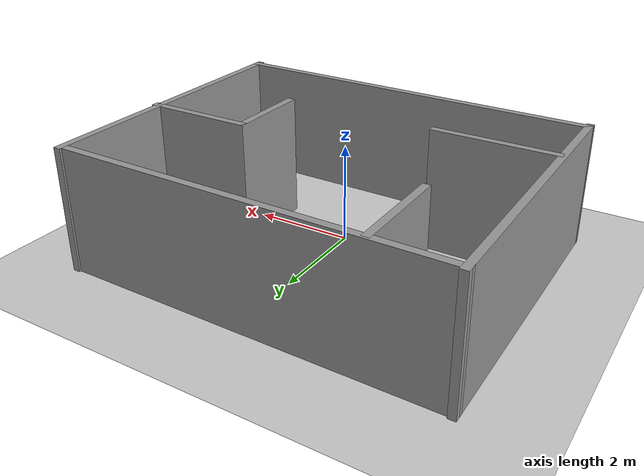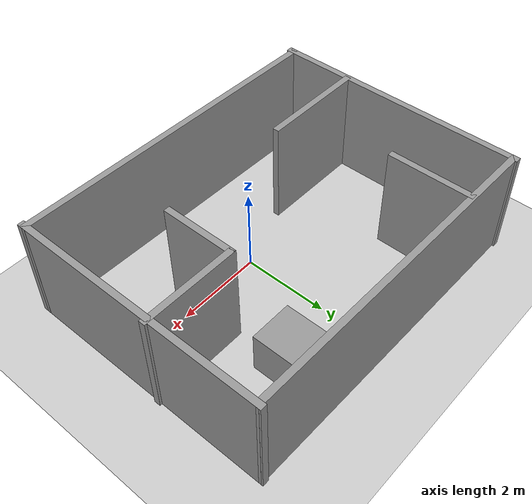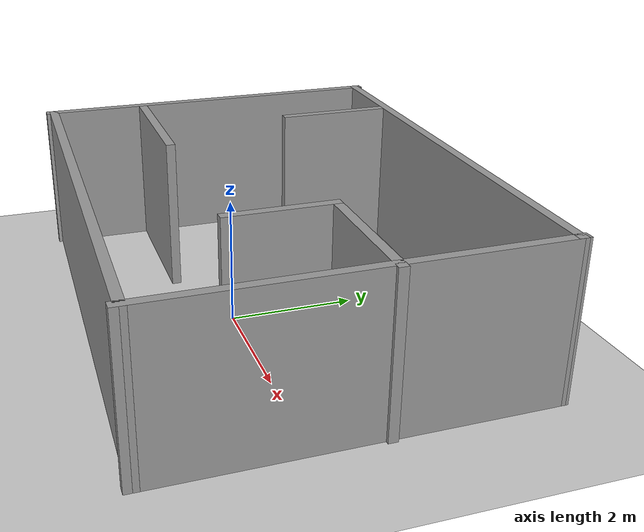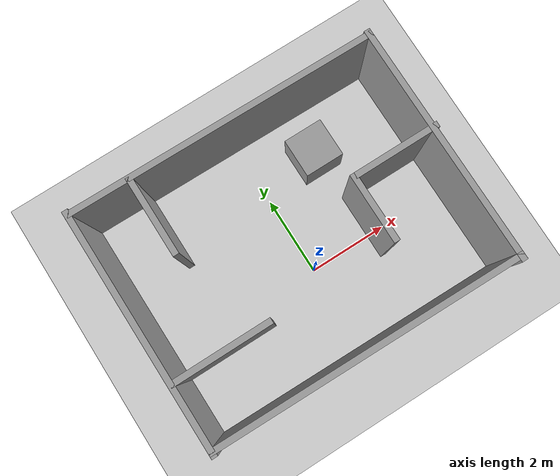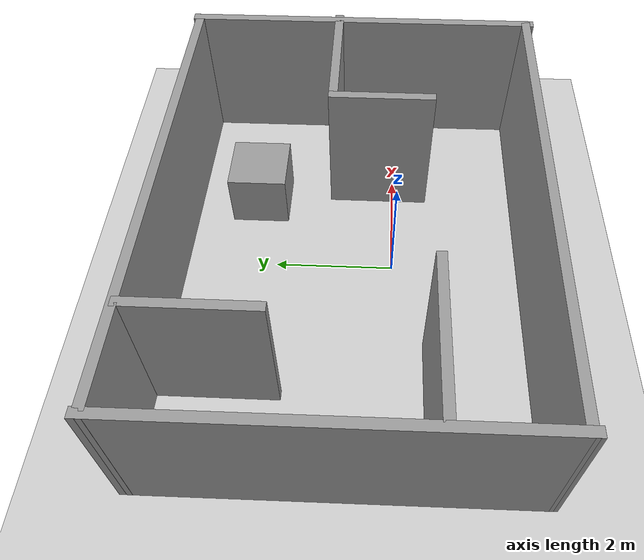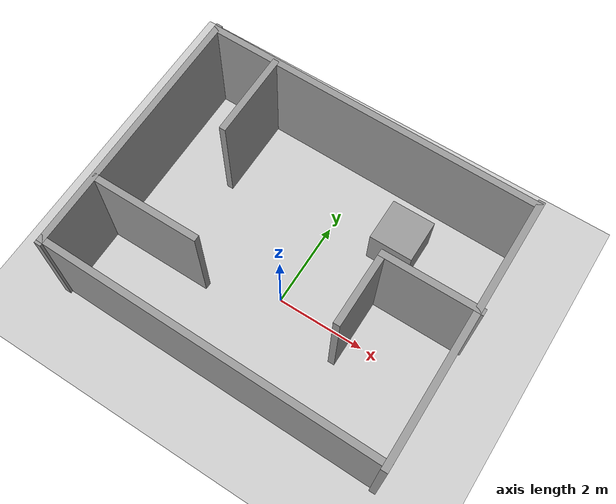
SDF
<sdf version="1.6">
 <world name="default">
  <light name="sun" type="directional">
   <pose>0 0 10 0 -0 0</pose>
   <diffuse>0.8 0.8 0.8 1</diffuse>
   <specular>0.2 0.2 0.2 1</specular>
   <attenuation>
    <range>1000</range>
    <constant>0.9</constant>
    <linear>0.01</linear>
    <quadratic>0.001</quadratic>
   </attenuation>
   <direction>-0.5 0.1 -0.9</direction>
  </light>
  <model name="ground_plane">
   <static>1</static>
   <link name="link">
    <collision name="collision">
     <geometry><plane><normal>0 0 1</normal><size>100 100</size></plane></geometry>
     <surface>
      <contact><collide_bitmask>65535</collide_bitmask></contact>
      <friction><ode><mu>100</mu><mu2>50</mu2></ode></friction>
     </surface>
    </collision>
    <visual name="visual">
     <cast_shadows>0</cast_shadows>
     <geometry><plane><normal>0 0 1</normal><size>100 100</size></plane></geometry>
     <material>
      <script><uri>file://media/materials/scripts/gazebo.material</uri><name>Gazebo/Grey</name></script>
     </material>
    </visual>
   </link>
  </model>
  <gravity>0 0 -9.8</gravity>
  <magnetic_field>6e-06 2.3e-05 -4.2e-05</magnetic_field>
  <atmosphere type="adiabatic"/>
  <physics name="default_physics" default="0" type="ode">
   <max_step_size>0.001</max_step_size>
   <real_time_factor>1</real_time_factor>
   <real_time_update_rate>1000</real_time_update_rate>
  </physics>
  <scene><ambient>0.4 0.4 0.4 1</ambient><background>0.7 0.7 0.7 1</background><shadows>1</shadows></scene>
  <audio><device>default</device></audio>
  <spherical_coordinates>
   <surface_model>EARTH_WGS84</surface_model>
   <latitude_deg>0</latitude_deg>
   <longitude_deg>0</longitude_deg>
   <elevation>0</elevation>
   <heading_deg>0</heading_deg>
  </spherical_coordinates>
  <model name="wall_test">
   <pose>-0.131016 0.687768 0 0 -0 0</pose>
   <link name="Wall_0">
    <collision name="Wall_0_Collision">
     <geometry><box><size>6.09764 0.15 2.5</size></box></geometry>
     <pose>0 0 1.25 0 -0 0</pose>
    </collision>
    <visual name="Wall_0_Visual">
     <pose>0 0 1.25 0 -0 0</pose>
     <geometry><box><size>6.09764 0.15 2.5</size></box></geometry>
     <material>
      <script><uri>file://media/materials/scripts/gazebo.material</uri><name>Gazebo/Grey</name></script>
      <ambient>1 1 1 1</ambient>
     </material>
     <meta><layer>0</layer></meta>
    </visual>
    <pose>-3.85698 0.040227 0 0 -0 -1.56742</pose>
   </link>
   <link name="Wall_1">
    <collision name="Wall_1_Collision">
     <geometry><box><size>7.82212 0.15 2.5</size></box></geometry>
     <pose>0 0 1.25 0 -0 0</pose>
    </collision>
    <visual name="Wall_1_Visual">
     <pose>0 0 1.25 0 -0 0</pose>
     <geometry><box><size>7.82212 0.15 2.5</size></box></geometry>
     <material>
      <script><uri>file://media/materials/scripts/gazebo.material</uri><name>Gazebo/Grey</name></script>
      <ambient>1 1 1 1</ambient>
     </material>
     <meta><layer>0</layer></meta>
    </visual>
    <pose>-0.011079 -2.91346 0 0 -0 -0.010487</pose>
   </link>
   <link name="Wall_13">
    <collision name="Wall_13_Collision">
     <geometry><box><size>2 0.15 2.5</size></box></geometry>
     <pose>0 0 1.25 0 -0 0</pose>
    </collision>
    <visual name="Wall_13_Visual">
     <pose>0 0 1.25 0 -0 0</pose>
     <geometry><box><size>2 0.15 2.5</size></box></geometry>
     <material>
      <script><uri>file://media/materials/scripts/gazebo.material</uri><name>Gazebo/Grey</name></script>
      <ambient>1 1 1 1</ambient>
     </material>
     <meta><layer>0</layer></meta>
    </visual>
    <pose>-2.34826 1.98568 0 0 -0 -1.5708</pose>
   </link>
   <link name="Wall_2">
    <collision name="Wall_2_Collision">
     <geometry><box><size>6.09764 0.15 2.5</size></box></geometry>
     <pose>0 0 1.25 0 -0 0</pose>
    </collision>
    <visual name="Wall_2_Visual">
     <pose>0 0 1.25 0 -0 0</pose>
     <geometry><box><size>6.09764 0.15 2.5</size></box></geometry>
     <material>
      <script><uri>file://media/materials/scripts/gazebo.material</uri><name>Gazebo/Grey</name></script>
      <ambient>1 1 1 1</ambient>
     </material>
     <meta><layer>0</layer></meta>
    </visual>
    <pose>3.81471 -0.040227 0 0 -0 1.57418</pose>
   </link>
   <link name="Wall_3">
    <collision name="Wall_3_Collision">
     <geometry><box><size>7.82212 0.15 2.5</size></box></geometry>
     <pose>0 0 1.25 0 -0 0</pose>
    </collision>
    <visual name="Wall_3_Visual">
     <pose>0 0 1.25 0 -0 0</pose>
     <geometry><box><size>7.82212 0.15 2.5</size></box></geometry>
     <material>
      <script><uri>file://media/materials/scripts/gazebo.material</uri><name>Gazebo/Grey</name></script>
      <ambient>1 1 1 1</ambient>
     </material>
     <meta><layer>0</layer></meta>
    </visual>
    <pose>-0.031192 2.93358 0 0 -0 3.13111</pose>
   </link>
   <link name="Wall_5">
    <collision name="Wall_5_Collision">
     <geometry><box><size>2.5 0.15 2.5</size></box></geometry>
     <pose>0 0 1.25 0 -0 0</pose>
    </collision>
    <visual name="Wall_5_Visual">
     <pose>0 0 1.25 0 -0 0</pose>
     <geometry><box><size>2.5 0.15 2.5</size></box></geometry>
     <material>
      <script><uri>file://media/materials/scripts/gazebo.material</uri><name>Gazebo/Grey</name></script>
      <ambient>1 1 1 1</ambient>
     </material>
     <meta><layer>0</layer></meta>
    </visual>
    <pose>-2.62045 -1.26902 0 0 -0 0</pose>
   </link>
   <link name="Wall_7">
    <collision name="Wall_7_Collision">
     <geometry><box><size>2.25 0.15 2.5</size></box></geometry>
     <pose>0 0 1.25 0 -0 0</pose>
    </collision>
    <visual name="Wall_7_Visual">
     <pose>0 0 1.25 0 -0 0</pose>
     <geometry><box><size>2.25 0.15 2.5</size></box></geometry>
     <material>
      <script><uri>file://media/materials/scripts/gazebo.material</uri><name>Gazebo/Grey</name></script>
      <ambient>1 1 1 1</ambient>
     </material>
     <meta><layer>0</layer></meta>
    </visual>
    <pose>2.81783 0.38029 0 0 -0 3.14159</pose>
   </link>
   <link name="Wall_8">
    <collision name="Wall_8_Collision">
     <geometry><box><size>1.75 0.15 2.5</size></box></geometry>
     <pose>0 0 1.25 0 -0 0</pose>
    </collision>
    <visual name="Wall_8_Visual">
     <pose>0 0 1.25 0 -0 0</pose>
     <geometry><box><size>1.75 0.15 2.5</size></box></geometry>
     <material>
      <script><uri>file://media/materials/scripts/gazebo.material</uri><name>Gazebo/Grey</name></script>
      <ambient>1 1 1 1</ambient>
     </material>
     <meta><layer>0</layer></meta>
    </visual>
    <pose>1.76782 -0.41971 0 0 -0 -1.5708</pose>
   </link>
   <static>1</static>
  </model>
  <model name="unit_box">
   <pose>1.49846 2.39527 0.5 0 -0 0</pose>
   <link name="link">
    <inertial>
     <mass>1</mass>
     <inertia>
      <ixx>0.166667</ixx>
      <ixy>0</ixy>
      <ixz>0</ixz>
      <iyy>0.166667</iyy>
      <iyz>0</iyz>
      <izz>0.166667</izz>
     </inertia>
    </inertial>
    <collision name="collision"><geometry><box><size>1 1 1</size></box></geometry></collision>
    <visual name="visual">
     <geometry><box><size>1 1 1</size></box></geometry>
     <material>
      <script><name>Gazebo/Grey</name><uri>file://media/materials/scripts/gazebo.material</uri></script>
     </material>
    </visual>
   </link>
  </model>
 </world>
</sdf>
